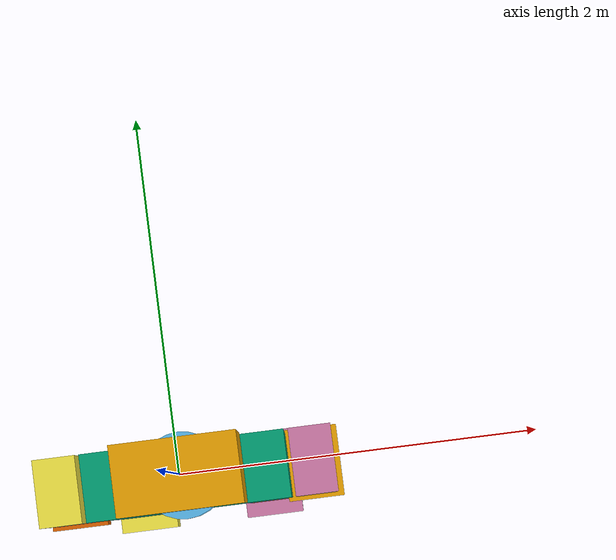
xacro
<?xml version="1.0"?>
<robot name="humanRobot"
    xmlns:controller="http://playerstage.sourceforge.net/gazebo/xmlschema/#controller"
    xmlns:interface="http://playerstage.sourceforge.net/gazebo/xmlschema/#interface"
    xmlns:sensor="http://playerstage.sourceforge.net/gazebo/xmlschema/#sensor"
    xmlns:xacro="http://ros.org/wiki/xacro">
    <xacro:macro name="boxShape" params="xyz rpy size" >
        <visual>
            <origin xyz="${xyz}" rpy="${rpy}" />
            <geometry>
                <box size="${size}" />
            </geometry>
        </visual>
        <collision>
            <origin xyz="${xyz}" rpy="${rpy}" />
            <geometry>
                <box size="${size}" />
            </geometry>
        </collision>
    </xacro:macro>

    <xacro:macro name="cylinderShape" params="xyz rpy length radius" >
        <visual>
            <origin xyz="${xyz}" rpy="${rpy}" />
            <geometry>
                <cylinder length="${length}" radius="${radius}"/>
            </geometry>
        </visual>
        <collision>
            <origin xyz="${xyz}" rpy="${rpy}" />
            <geometry>
                <cylinder length="${length}" radius="${radius}"/>
            </geometry>
        </collision>
    </xacro:macro>
    <xacro:macro name="massV" params="massValue" >
        <inertial>
            <mass value="${massValue}"/>
            <inertia ixx="0.4" ixy="0.0" ixz="0.0" iyy="0.4" iyz="0.0" izz="0.2"/>
        </inertial>
    </xacro:macro>
    <link name="head">
        <xacro:boxShape  xyz="0 0 0" rpy="0 0 0" size ="0.7 0.4 0.7" />
        <xacro:massV  massValue="0.5" />
    </link>
    <joint name="head_neck" type="fixed">
        <origin xyz="0 0 -0.475" rpy="0 0 0" />
        <axis xyz="1 0 0" />
        <parent link="head"/>
        <child link="neck"/>
    </joint>
    <link name="neck">
        <xacro:cylinderShape  xyz="0 0 0" rpy="0 0 0" length ="0.25"  radius ="0.25"/>
        <xacro:massV  massValue="0.2" />
    </link>
    <joint name="neck_body" type="fixed">
        <origin xyz="0 0 -0.925" rpy="0 0 0" />
        <axis xyz="0 0 0" />
        <parent link="neck"/>
        <child link="body"/>
    </joint>
    <link name="body">
        <xacro:boxShape  xyz="0 0 0" rpy="0 0 0" size ="1.2 0.4 1.6" />
        <xacro:massV  massValue="5" />
    </link>

    <xacro:macro name="arm" params="name xyz" >
        <joint name="${name}" type="continuous">
            <origin xyz="${xyz}" rpy="0 0 0" />
            <axis xyz="1 0 0" />
            <parent link="body"/>
            <child link="${name}_up_arm"/>
            <limit effort="2000.0" lower="0.0" upper="2000.0" velocity="0.5"/>
            <dynamics damping="0.2"/>
        </joint>
        <link name="${name}_up_arm">
            <xacro:boxShape  xyz="0 0 -0.3" rpy="0 0 0" size ="0.25 0.4 0.6" />
            <xacro:massV  massValue="1" />
        </link>
        <joint name="${name}_joint_up" type="continuous">
            <origin xyz="0 0 -0.6" rpy="0 0 0" />
            <axis xyz="1 0 0" />
            <parent link="${name}_up_arm"/>
            <child link="${name}_down_arm"/>
            <limit effort="2000.0" lower="0.0" upper="2000.0" velocity="0.5"/>
            <dynamics damping="0.2"/>
        </joint>
        <link name="${name}_down_arm">
            <xacro:boxShape  xyz="0 0 -0.3" rpy="0 0 0" size ="0.25 0.4 0.6" />
            <xacro:massV  massValue="1" />
        </link>
        <joint name="${name}_joint_down" type="continuous">
            <origin xyz="0 0 -0.6" rpy="0 0 0" />
            <axis xyz="1 0 0" />
            <parent link="${name}_down_arm"/>
            <child link="${name}_hand"/>
            <limit effort="2000.0" lower="0.0" upper="2000.0" velocity="0.5"/>
            <dynamics damping="0.2"/>
        </joint>
        <link name="${name}_hand">
            <xacro:boxShape  xyz="0 0 -0.1" rpy="0 0 0" size ="0.35 0.45 0.2" />
            <xacro:massV  massValue="0.4" />
        </link>
    </xacro:macro>
    <xacro:arm name="leftArm" xyz="-0.75 0 0.8" />
    <xacro:arm name="rightArm" xyz="0.75 0 0.8" />

    <xacro:macro name="leg" params="name xyz" >
        <joint name="${name}" type="continuous">
            <origin xyz="${xyz}" rpy="0 0 0" />
            <axis xyz="1 0 0" />
            <parent link="body"/>
            <child link="${name}_up_leg"/>
            <limit effort="2000.0" lower="0.0" upper="2000.0" velocity="0.5"/>
            <dynamics damping="0.2"/>
        </joint>
        <link name="${name}_up_leg">
            <xacro:boxShape  xyz="0 0 -0.4" rpy="0 0 0" size ="0.3 0.4 0.8" />
            <xacro:massV  massValue="2" />
        </link>
        <joint name="${name}_joint_up" type="continuous">
            <origin xyz="0 0 -0.8" rpy="0 0 0" />
            <axis xyz="1 0 0" />
            <parent link="${name}_up_leg"/>
            <child link="${name}_down_leg"/>
            <limit effort="2000.0" lower="0.0" upper="2000.0" velocity="0.5"/>
            <dynamics damping="0.2"/>
        </joint>
        <link name="${name}_down_leg">
            <xacro:boxShape  xyz="0 0 -0.4" rpy="0 0 0" size ="0.3 0.4 0.8" />
            <xacro:massV  massValue="2" />
        </link>
        <joint name="${name}_joint_down" type="continuous">
            <origin xyz="0 0 -0.8" rpy="0 0 0" />
            <axis xyz="1 0 0" />
            <parent link="${name}_down_leg"/>
            <child link="${name}_foot"/>
            <limit effort="2000.0" lower="0.0" upper="2000.0" velocity="0.5"/>
            <dynamics damping="0.2"/>
        </joint>
        <link name="${name}_foot">
            <xacro:boxShape  xyz="0 0 -0.15" rpy="0 0 0" size ="0.4 0.6 0.3" />
            <xacro:massV  massValue="0.6" />
        </link>
    </xacro:macro>

    <xacro:leg name="leftLeg" xyz="-0.45 0 -0.8" />
    <xacro:leg name="rightLeg" xyz="0.45 0 -0.8" />
</robot>
